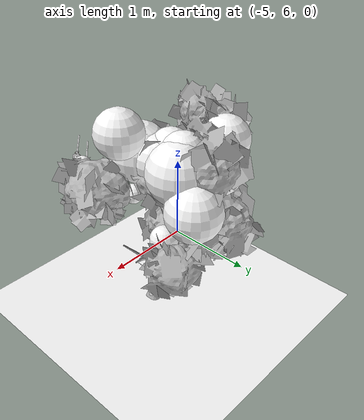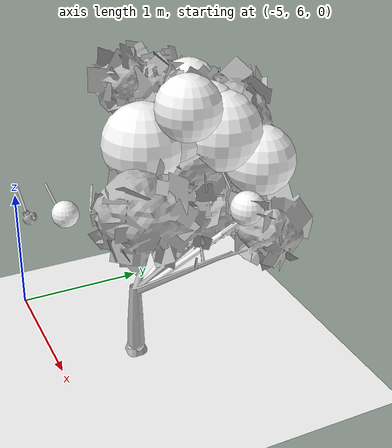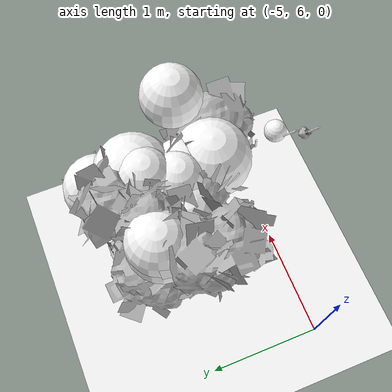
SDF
<sdf version="1.11">
 <world name="peach_orchard">
  <model name="ground">
   <static>true</static>
   <link name="link">
    <visual name="soil">
     <geometry><plane><normal>0 0 1</normal><size>32 22</size></plane></geometry>
     <material>
      <ambient>1 1 1 1</ambient>
      <diffuse>1 1 1 1</diffuse>
      <specular>0.1 0.1 0.1 1</specular>
      <pbr>
       <metal>
        <albedo_map>textures/soil_albedo.png</albedo_map>
        <normal_map type="tangent">textures/soil_normal.png</normal_map>
        <roughness>0.95</roughness>
        <metalness>0</metalness>
       </metal>
      </pbr>
     </material>
    </visual>
    <collision name="c_soil">
     <geometry><plane><normal>0 0 1</normal><size>32 22</size></plane></geometry>
    </collision>
   </link>
  </model>
  <model name="tree_r1_t6">
   <pose>-4 6.6 0 0 0 0</pose>
   <static>true</static>
   <link name="link">
    <visual name="tree_mesh">
     <pose>0 0 0 0 0 -0.0797079</pose>
     <geometry>
      <mesh><uri>model://peach_sim/meshes/peach_tree_a.glb</uri><scale>1.02047 1.02047 1.02047</scale></mesh>
     </geometry>
    </visual>
    <visual name="trunk_0">
     <pose>0 0 0.155446 0 0 0</pose>
     <geometry><cylinder><radius>0.0460714</radius><length>0.310893</length></cylinder></geometry>
     <material>
      <ambient>1 1 1 1</ambient>
      <diffuse>1 1 1 1</diffuse>
      <specular>0.1 0.1 0.1 1</specular>
      <pbr>
       <metal>
        <albedo_map>textures/bark_albedo.png</albedo_map>
        <normal_map type="tangent">textures/bark_normal.png</normal_map>
        <roughness>0.9</roughness>
        <metalness>0</metalness>
       </metal>
      </pbr>
     </material>
    </visual>
    <collision name="c_trunk_0">
     <pose>0 0 0.155446 0 0 0</pose>
     <geometry><cylinder><radius>0.0460714</radius><length>0.310893</length></cylinder></geometry>
    </collision>
    <visual name="trunk_1">
     <pose>0 0 0.438076 0 0 0</pose>
     <geometry><cylinder><radius>0.0331714</radius><length>0.254367</length></cylinder></geometry>
     <material>
      <ambient>1 1 1 1</ambient>
      <diffuse>1 1 1 1</diffuse>
      <specular>0.1 0.1 0.1 1</specular>
      <pbr>
       <metal>
        <albedo_map>textures/bark_albedo.png</albedo_map>
        <normal_map type="tangent">textures/bark_normal.png</normal_map>
        <roughness>0.9</roughness>
        <metalness>0</metalness>
       </metal>
      </pbr>
     </material>
    </visual>
    <collision name="c_trunk_1">
     <pose>0 0 0.438076 0 0 0</pose>
     <geometry><cylinder><radius>0.0331714</radius><length>0.254367</length></cylinder></geometry>
    </collision>
    <visual name="root_flare">
     <pose>0 0 0.035 0 0 0</pose>
     <geometry><cylinder><radius>0.0668035</radius><length>0.07</length></cylinder></geometry>
     <material>
      <ambient>1 1 1 1</ambient>
      <diffuse>1 1 1 1</diffuse>
      <specular>0.1 0.1 0.1 1</specular>
      <pbr>
       <metal>
        <albedo_map>textures/bark_albedo.png</albedo_map>
        <normal_map type="tangent">textures/bark_normal.png</normal_map>
        <roughness>0.95</roughness>
        <metalness>0</metalness>
       </metal>
      </pbr>
     </material>
    </visual>
    <visual name="scaffold_0">
     <pose>-0.0563852 0.23334 0.718153 0 0.880829 1.80789</pose>
     <geometry><cylinder><radius>0.022</radius><length>0.622499</length></cylinder></geometry>
     <material>
      <ambient>1 1 1 1</ambient>
      <diffuse>1 1 1 1</diffuse>
      <specular>0.1 0.1 0.1 1</specular>
      <pbr>
       <metal>
        <albedo_map>textures/bark_albedo.png</albedo_map>
        <normal_map type="tangent">textures/bark_normal.png</normal_map>
        <roughness>0.9</roughness>
        <metalness>0</metalness>
       </metal>
      </pbr>
     </material>
    </visual>
    <collision name="c_scaffold_0">
     <pose>-0.0563852 0.23334 0.718153 0 0.880829 1.80789</pose>
     <geometry><cylinder><radius>0.022</radius><length>0.622499</length></cylinder></geometry>
    </collision>
    <visual name="branchlet_0_0">
     <pose>-0.16412 0.266857 0.862074 0 0.948913 -2.61581</pose>
     <geometry><cylinder><radius>0.012</radius><length>0.248601</length></cylinder></geometry>
     <material>
      <ambient>1 1 1 1</ambient>
      <diffuse>1 1 1 1</diffuse>
      <specular>0.1 0.1 0.1 1</specular>
      <pbr>
       <metal>
        <albedo_map>textures/bark_albedo.png</albedo_map>
        <normal_map type="tangent">textures/bark_normal.png</normal_map>
        <roughness>0.9</roughness>
        <metalness>0</metalness>
       </metal>
      </pbr>
     </material>
    </visual>
    <visual name="branchlet_0_1">
     <pose>-0.00693614 0.469387 0.894814 0 1.14023 0.863252</pose>
     <geometry><cylinder><radius>0.012</radius><length>0.281148</length></cylinder></geometry>
     <material>
      <ambient>1 1 1 1</ambient>
      <diffuse>1 1 1 1</diffuse>
      <specular>0.1 0.1 0.1 1</specular>
      <pbr>
       <metal>
        <albedo_map>textures/bark_albedo.png</albedo_map>
        <normal_map type="tangent">textures/bark_normal.png</normal_map>
        <roughness>0.9</roughness>
        <metalness>0</metalness>
       </metal>
      </pbr>
     </material>
    </visual>
    <visual name="branchlet_0_2">
     <pose>-0.171446 0.26641 0.793555 0 1.0024 2.84659</pose>
     <geometry><cylinder><radius>0.012</radius><length>0.286609</length></cylinder></geometry>
     <material>
      <ambient>1 1 1 1</ambient>
      <diffuse>1 1 1 1</diffuse>
      <specular>0.1 0.1 0.1 1</specular>
      <pbr>
       <metal>
        <albedo_map>textures/bark_albedo.png</albedo_map>
        <normal_map type="tangent">textures/bark_normal.png</normal_map>
        <roughness>0.9</roughness>
        <metalness>0</metalness>
       </metal>
      </pbr>
     </material>
    </visual>
    <visual name="scaffold_1">
     <pose>0.17417 0.307586 0.832625 0 0.846711 1.05556</pose>
     <geometry><cylinder><radius>0.022</radius><length>0.943726</length></cylinder></geometry>
     <material>
      <ambient>1 1 1 1</ambient>
      <diffuse>1 1 1 1</diffuse>
      <specular>0.1 0.1 0.1 1</specular>
      <pbr>
       <metal>
        <albedo_map>textures/bark_albedo.png</albedo_map>
        <normal_map type="tangent">textures/bark_normal.png</normal_map>
        <roughness>0.9</roughness>
        <metalness>0</metalness>
       </metal>
      </pbr>
     </material>
    </visual>
    <collision name="c_scaffold_1">
     <pose>0.17417 0.307586 0.832625 0 0.846711 1.05556</pose>
     <geometry><cylinder><radius>0.022</radius><length>0.943726</length></cylinder></geometry>
    </collision>
    <visual name="branchlet_1_0">
     <pose>0.388644 0.568651 1.16295 0 0.748782 0.356359</pose>
     <geometry><cylinder><radius>0.012</radius><length>0.26473</length></cylinder></geometry>
     <material>
      <ambient>1 1 1 1</ambient>
      <diffuse>1 1 1 1</diffuse>
      <specular>0.1 0.1 0.1 1</specular>
      <pbr>
       <metal>
        <albedo_map>textures/bark_albedo.png</albedo_map>
        <normal_map type="tangent">textures/bark_normal.png</normal_map>
        <roughness>0.9</roughness>
        <metalness>0</metalness>
       </metal>
      </pbr>
     </material>
    </visual>
    <visual name="branchlet_1_1">
     <pose>0.22652 0.489331 1.012 0 0.805998 1.53782</pose>
     <geometry><cylinder><radius>0.012</radius><length>0.262973</length></cylinder></geometry>
     <material>
      <ambient>1 1 1 1</ambient>
      <diffuse>1 1 1 1</diffuse>
      <specular>0.1 0.1 0.1 1</specular>
      <pbr>
       <metal>
        <albedo_map>textures/bark_albedo.png</albedo_map>
        <normal_map type="tangent">textures/bark_normal.png</normal_map>
        <roughness>0.9</roughness>
        <metalness>0</metalness>
       </metal>
      </pbr>
     </material>
    </visual>
    <visual name="canopy_0">
     <pose>0.139277 0.229171 1.80107 0 0 0</pose>
     <geometry><sphere><radius>0.22702</radius></sphere></geometry>
     <material>
      <ambient>1 1 1 1</ambient>
      <diffuse>1 1 1 1</diffuse>
      <specular>0.1 0.1 0.1 1</specular>
      <pbr>
       <metal>
        <albedo_map>textures/leaf_albedo.png</albedo_map>
        <normal_map type="tangent">textures/leaf_normal.png</normal_map>
        <roughness>0.85</roughness>
        <metalness>0</metalness>
       </metal>
      </pbr>
     </material>
    </visual>
    <collision name="c_canopy_0">
     <pose>0.139277 0.229171 1.80107 0 0 0</pose>
     <geometry><sphere><radius>0.22702</radius></sphere></geometry>
    </collision>
    <visual name="canopy_1">
     <pose>0.053661 0.2985 1.89747 0 0 0</pose>
     <geometry><sphere><radius>0.184784</radius></sphere></geometry>
     <material>
      <ambient>1 1 1 1</ambient>
      <diffuse>1 1 1 1</diffuse>
      <specular>0.1 0.1 0.1 1</specular>
      <pbr>
       <metal>
        <albedo_map>textures/leaf_albedo.png</albedo_map>
        <normal_map type="tangent">textures/leaf_normal.png</normal_map>
        <roughness>0.85</roughness>
        <metalness>0</metalness>
       </metal>
      </pbr>
     </material>
    </visual>
    <collision name="c_canopy_1">
     <pose>0.053661 0.2985 1.89747 0 0 0</pose>
     <geometry><sphere><radius>0.184784</radius></sphere></geometry>
    </collision>
    <visual name="canopy_2">
     <pose>-0.161771 0.310428 1.80896 0 0 0</pose>
     <geometry><sphere><radius>0.191631</radius></sphere></geometry>
     <material>
      <ambient>1 1 1 1</ambient>
      <diffuse>1 1 1 1</diffuse>
      <specular>0.1 0.1 0.1 1</specular>
      <pbr>
       <metal>
        <albedo_map>textures/leaf_albedo.png</albedo_map>
        <normal_map type="tangent">textures/leaf_normal.png</normal_map>
        <roughness>0.85</roughness>
        <metalness>0</metalness>
       </metal>
      </pbr>
     </material>
    </visual>
    <collision name="c_canopy_2">
     <pose>-0.161771 0.310428 1.80896 0 0 0</pose>
     <geometry><sphere><radius>0.191631</radius></sphere></geometry>
    </collision>
    <visual name="canopy_3">
     <pose>0.500705 0.163103 2.14758 0 0 0</pose>
     <geometry><sphere><radius>0.210416</radius></sphere></geometry>
     <material>
      <ambient>1 1 1 1</ambient>
      <diffuse>1 1 1 1</diffuse>
      <specular>0.1 0.1 0.1 1</specular>
      <pbr>
       <metal>
        <albedo_map>textures/leaf_albedo.png</albedo_map>
        <normal_map type="tangent">textures/leaf_normal.png</normal_map>
        <roughness>0.85</roughness>
        <metalness>0</metalness>
       </metal>
      </pbr>
     </material>
    </visual>
    <visual name="canopy_4">
     <pose>-0.269784 0.540299 1.66564 0 0 0</pose>
     <geometry><sphere><radius>0.257334</radius></sphere></geometry>
     <material>
      <ambient>1 1 1 1</ambient>
      <diffuse>1 1 1 1</diffuse>
      <specular>0.1 0.1 0.1 1</specular>
      <pbr>
       <metal>
        <albedo_map>textures/leaf_albedo.png</albedo_map>
        <normal_map type="tangent">textures/leaf_normal.png</normal_map>
        <roughness>0.85</roughness>
        <metalness>0</metalness>
       </metal>
      </pbr>
     </material>
    </visual>
    <visual name="canopy_5">
     <pose>0.322686 0.804857 1.60552 0 0 0</pose>
     <geometry><sphere><radius>0.247517</radius></sphere></geometry>
     <material>
      <ambient>1 1 1 1</ambient>
      <diffuse>1 1 1 1</diffuse>
      <specular>0.1 0.1 0.1 1</specular>
      <pbr>
       <metal>
        <albedo_map>textures/leaf_albedo.png</albedo_map>
        <normal_map type="tangent">textures/leaf_normal.png</normal_map>
        <roughness>0.85</roughness>
        <metalness>0</metalness>
       </metal>
      </pbr>
     </material>
    </visual>
    <visual name="canopy_6">
     <pose>-0.03323 0.440432 1.69801 0 0 0</pose>
     <geometry><sphere><radius>0.212778</radius></sphere></geometry>
     <material>
      <ambient>1 1 1 1</ambient>
      <diffuse>1 1 1 1</diffuse>
      <specular>0.1 0.1 0.1 1</specular>
      <pbr>
       <metal>
        <albedo_map>textures/leaf_albedo.png</albedo_map>
        <normal_map type="tangent">textures/leaf_normal.png</normal_map>
        <roughness>0.85</roughness>
        <metalness>0</metalness>
       </metal>
      </pbr>
     </material>
    </visual>
    <visual name="canopy_7">
     <pose>0.128428 0.504241 1.95153 0 0 0</pose>
     <geometry><sphere><radius>0.192184</radius></sphere></geometry>
     <material>
      <ambient>1 1 1 1</ambient>
      <diffuse>1 1 1 1</diffuse>
      <specular>0.1 0.1 0.1 1</specular>
      <pbr>
       <metal>
        <albedo_map>textures/leaf_albedo.png</albedo_map>
        <normal_map type="tangent">textures/leaf_normal.png</normal_map>
        <roughness>0.85</roughness>
        <metalness>0</metalness>
       </metal>
      </pbr>
     </material>
    </visual>
    <visual name="canopy_8">
     <pose>-0.330089 0.576447 1.93813 0 0 0</pose>
     <geometry><sphere><radius>0.219715</radius></sphere></geometry>
     <material>
      <ambient>1 1 1 1</ambient>
      <diffuse>1 1 1 1</diffuse>
      <specular>0.1 0.1 0.1 1</specular>
      <pbr>
       <metal>
        <albedo_map>textures/leaf_albedo.png</albedo_map>
        <normal_map type="tangent">textures/leaf_normal.png</normal_map>
        <roughness>0.85</roughness>
        <metalness>0</metalness>
       </metal>
      </pbr>
     </material>
    </visual>
    <visual name="canopy_9">
     <pose>0.0551293 0.306823 1.83378 0 0 0</pose>
     <geometry><sphere><radius>0.185231</radius></sphere></geometry>
     <material>
      <ambient>1 1 1 1</ambient>
      <diffuse>1 1 1 1</diffuse>
      <specular>0.1 0.1 0.1 1</specular>
      <pbr>
       <metal>
        <albedo_map>textures/leaf_albedo.png</albedo_map>
        <normal_map type="tangent">textures/leaf_normal.png</normal_map>
        <roughness>0.85</roughness>
        <metalness>0</metalness>
       </metal>
      </pbr>
     </material>
    </visual>
    <visual name="canopy_10">
     <pose>0.150453 0.0129475 1.79868 0 0 0</pose>
     <geometry><sphere><radius>0.278689</radius></sphere></geometry>
     <material>
      <ambient>1 1 1 1</ambient>
      <diffuse>1 1 1 1</diffuse>
      <specular>0.1 0.1 0.1 1</specular>
      <pbr>
       <metal>
        <albedo_map>textures/leaf_albedo.png</albedo_map>
        <normal_map type="tangent">textures/leaf_normal.png</normal_map>
        <roughness>0.85</roughness>
        <metalness>0</metalness>
       </metal>
      </pbr>
     </material>
    </visual>
    <visual name="canopy_11">
     <pose>0.228379 0.546825 1.82772 0 0 0</pose>
     <geometry><sphere><radius>0.279135</radius></sphere></geometry>
     <material>
      <ambient>1 1 1 1</ambient>
      <diffuse>1 1 1 1</diffuse>
      <specular>0.1 0.1 0.1 1</specular>
      <pbr>
       <metal>
        <albedo_map>textures/leaf_albedo.png</albedo_map>
        <normal_map type="tangent">textures/leaf_normal.png</normal_map>
        <roughness>0.85</roughness>
        <metalness>0</metalness>
       </metal>
      </pbr>
     </material>
    </visual>
    <visual name="foliage_0">
     <pose>0.292826 0.0656254 1.45358 0 0 0</pose>
     <geometry><sphere><radius>0.0905081</radius></sphere></geometry>
     <material>
      <ambient>1 1 1 1</ambient>
      <diffuse>1 1 1 1</diffuse>
      <specular>0.1 0.1 0.1 1</specular>
      <pbr>
       <metal>
        <albedo_map>textures/leaf_albedo.png</albedo_map>
        <normal_map type="tangent">textures/leaf_normal.png</normal_map>
        <roughness>0.85</roughness>
        <metalness>0</metalness>
       </metal>
      </pbr>
     </material>
    </visual>
    <visual name="foliage_4">
     <pose>0.486793 0.631297 1.34801 0 0 0</pose>
     <geometry><sphere><radius>0.121265</radius></sphere></geometry>
     <material>
      <ambient>1 1 1 1</ambient>
      <diffuse>1 1 1 1</diffuse>
      <specular>0.1 0.1 0.1 1</specular>
      <pbr>
       <metal>
        <albedo_map>textures/leaf_albedo.png</albedo_map>
        <normal_map type="tangent">textures/leaf_normal.png</normal_map>
        <roughness>0.85</roughness>
        <metalness>0</metalness>
       </metal>
      </pbr>
     </material>
    </visual>
    <visual name="foliage_8">
     <pose>0.326243 -0.594078 1.50272 0 0 0</pose>
     <geometry><sphere><radius>0.0864075</radius></sphere></geometry>
     <material>
      <ambient>1 1 1 1</ambient>
      <diffuse>1 1 1 1</diffuse>
      <specular>0.1 0.1 0.1 1</specular>
      <pbr>
       <metal>
        <albedo_map>textures/leaf_albedo.png</albedo_map>
        <normal_map type="tangent">textures/leaf_normal.png</normal_map>
        <roughness>0.85</roughness>
        <metalness>0</metalness>
       </metal>
      </pbr>
     </material>
    </visual>
    <visual name="twig_0">
     <pose>0.274969 0.0701198 1.54979 0 0.219394 -2.87174</pose>
     <geometry><cylinder><radius>0.007</radius><length>0.148588</length></cylinder></geometry>
     <material>
      <ambient>1 1 1 1</ambient>
      <diffuse>1 1 1 1</diffuse>
      <specular>0.1 0.1 0.1 1</specular>
      <pbr>
       <metal>
        <albedo_map>textures/bark_albedo.png</albedo_map>
        <normal_map type="tangent">textures/bark_normal.png</normal_map>
        <roughness>0.9</roughness>
        <metalness>0</metalness>
       </metal>
      </pbr>
     </material>
    </visual>
    <visual name="twig_1">
     <pose>0.211327 0.107679 1.53851 0 0.202906 -2.36469</pose>
     <geometry><cylinder><radius>0.007</radius><length>0.116482</length></cylinder></geometry>
     <material>
      <ambient>1 1 1 1</ambient>
      <diffuse>1 1 1 1</diffuse>
      <specular>0.1 0.1 0.1 1</specular>
      <pbr>
       <metal>
        <albedo_map>textures/bark_albedo.png</albedo_map>
        <normal_map type="tangent">textures/bark_normal.png</normal_map>
        <roughness>0.9</roughness>
        <metalness>0</metalness>
       </metal>
      </pbr>
     </material>
    </visual>
    <visual name="twig_2">
     <pose>0.190153 0.274959 1.46731 0 0.332292 2.521</pose>
     <geometry><cylinder><radius>0.007</radius><length>0.128142</length></cylinder></geometry>
     <material>
      <ambient>1 1 1 1</ambient>
      <diffuse>1 1 1 1</diffuse>
      <specular>0.1 0.1 0.1 1</specular>
      <pbr>
       <metal>
        <albedo_map>textures/bark_albedo.png</albedo_map>
        <normal_map type="tangent">textures/bark_normal.png</normal_map>
        <roughness>0.9</roughness>
        <metalness>0</metalness>
       </metal>
      </pbr>
     </material>
    </visual>
    <visual name="twig_3">
     <pose>0.16142 0.345957 1.4584 0 0.601581 -2.88882</pose>
     <geometry><cylinder><radius>0.007</radius><length>0.206213</length></cylinder></geometry>
     <material>
      <ambient>1 1 1 1</ambient>
      <diffuse>1 1 1 1</diffuse>
      <specular>0.1 0.1 0.1 1</specular>
      <pbr>
       <metal>
        <albedo_map>textures/bark_albedo.png</albedo_map>
        <normal_map type="tangent">textures/bark_normal.png</normal_map>
        <roughness>0.9</roughness>
        <metalness>0</metalness>
       </metal>
      </pbr>
     </material>
    </visual>
    <visual name="twig_4">
     <pose>0.368676 0.523451 1.52761 0 0.442477 -2.32398</pose>
     <geometry><cylinder><radius>0.007</radius><length>0.127567</length></cylinder></geometry>
     <material>
      <ambient>1 1 1 1</ambient>
      <diffuse>1 1 1 1</diffuse>
      <specular>0.1 0.1 0.1 1</specular>
      <pbr>
       <metal>
        <albedo_map>textures/bark_albedo.png</albedo_map>
        <normal_map type="tangent">textures/bark_normal.png</normal_map>
        <roughness>0.9</roughness>
        <metalness>0</metalness>
       </metal>
      </pbr>
     </material>
    </visual>
    <visual name="twig_5">
     <pose>0.267438 0.743042 1.54467 0 0.742052 2.80584</pose>
     <geometry><cylinder><radius>0.007</radius><length>0.175438</length></cylinder></geometry>
     <material>
      <ambient>1 1 1 1</ambient>
      <diffuse>1 1 1 1</diffuse>
      <specular>0.1 0.1 0.1 1</specular>
      <pbr>
       <metal>
        <albedo_map>textures/bark_albedo.png</albedo_map>
        <normal_map type="tangent">textures/bark_normal.png</normal_map>
        <roughness>0.9</roughness>
        <metalness>0</metalness>
       </metal>
      </pbr>
     </material>
    </visual>
    <visual name="twig_6">
     <pose>0.196366 0.930762 1.56495 0 0.48874 -2.83306</pose>
     <geometry><cylinder><radius>0.007</radius><length>0.105158</length></cylinder></geometry>
     <material>
      <ambient>1 1 1 1</ambient>
      <diffuse>1 1 1 1</diffuse>
      <specular>0.1 0.1 0.1 1</specular>
      <pbr>
       <metal>
        <albedo_map>textures/bark_albedo.png</albedo_map>
        <normal_map type="tangent">textures/bark_normal.png</normal_map>
        <roughness>0.9</roughness>
        <metalness>0</metalness>
       </metal>
      </pbr>
     </material>
    </visual>
    <visual name="twig_7">
     <pose>0.262839 -0.39947 1.54461 0 0.271121 2.44569</pose>
     <geometry><cylinder><radius>0.007</radius><length>0.178491</length></cylinder></geometry>
     <material>
      <ambient>1 1 1 1</ambient>
      <diffuse>1 1 1 1</diffuse>
      <specular>0.1 0.1 0.1 1</specular>
      <pbr>
       <metal>
        <albedo_map>textures/bark_albedo.png</albedo_map>
        <normal_map type="tangent">textures/bark_normal.png</normal_map>
        <roughness>0.9</roughness>
        <metalness>0</metalness>
       </metal>
      </pbr>
     </material>
    </visual>
    <visual name="twig_8">
     <pose>0.222235 -0.645996 1.59426 0 0.498165 -2.50215</pose>
     <geometry><cylinder><radius>0.007</radius><length>0.176146</length></cylinder></geometry>
     <material>
      <ambient>1 1 1 1</ambient>
      <diffuse>1 1 1 1</diffuse>
      <specular>0.1 0.1 0.1 1</specular>
      <pbr>
       <metal>
        <albedo_map>textures/bark_albedo.png</albedo_map>
        <normal_map type="tangent">textures/bark_normal.png</normal_map>
        <roughness>0.9</roughness>
        <metalness>0</metalness>
       </metal>
      </pbr>
     </material>
    </visual>
    <visual name="twig_9">
     <pose>0.189731 -0.826428 1.58163 0 0.418723 -2.75962</pose>
     <geometry><cylinder><radius>0.007</radius><length>0.179669</length></cylinder></geometry>
     <material>
      <ambient>1 1 1 1</ambient>
      <diffuse>1 1 1 1</diffuse>
      <specular>0.1 0.1 0.1 1</specular>
      <pbr>
       <metal>
        <albedo_map>textures/bark_albedo.png</albedo_map>
        <normal_map type="tangent">textures/bark_normal.png</normal_map>
        <roughness>0.9</roughness>
        <metalness>0</metalness>
       </metal>
      </pbr>
     </material>
    </visual>
   </link>
  </model>
  <model name="peach_tree_r1_t6_09">
   <pose>-3.74791 5.81155 1.45 0 0.647307 -2.43371</pose>
   <static>true</static>
   <link name="bag">
    <visual name="bag_mesh">
     <pose>0 0 0.0400623 0 0 -0</pose>
     <geometry>
      <mesh><uri>model://peach_sim/meshes/bagged_peach.glb</uri><scale>1.06042 1.17245 0.910506</scale></mesh>
     </geometry>
    </visual>
    <visual name="body">
     <pose>0 0 0.0220623 0 0 0</pose>
     <geometry><ellipsoid><radii>0.0397658 0.0304837 0.0238273</radii></ellipsoid></geometry>
     <material>
      <ambient>1 1 1 1</ambient>
      <diffuse>1 1 1 1</diffuse>
      <specular>0.1 0.1 0.1 1</specular>
      <pbr>
       <metal>
        <albedo_map>textures/paper_bag_albedo.png</albedo_map>
        <normal_map type="tangent">textures/paper_bag_normal.png</normal_map>
        <roughness>0.72</roughness>
        <metalness>0</metalness>
       </metal>
      </pbr>
     </material>
    </visual>
    <visual name="bottom_fold">
     <pose>0 0 0.012 0 0 0.35</pose>
     <geometry><box><size>0.061637 0.0350563 0.022</size></box></geometry>
     <material>
      <ambient>1 1 1 1</ambient>
      <diffuse>1 1 1 1</diffuse>
      <specular>0.1 0.1 0.1 1</specular>
      <pbr>
       <metal>
        <albedo_map>textures/paper_bag_albedo.png</albedo_map>
        <normal_map type="tangent">textures/paper_bag_normal.png</normal_map>
        <roughness>0.8</roughness>
        <metalness>0</metalness>
       </metal>
      </pbr>
     </material>
    </visual>
    <visual name="fruit">
     <pose>0 0 0.0216229 0 0 0</pose>
     <geometry><sphere><radius>0.0287278</radius></sphere></geometry>
     <material>
      <ambient>1 1 1 1</ambient>
      <diffuse>1 1 1 1</diffuse>
      <specular>0.1 0.1 0.1 1</specular>
      <pbr>
       <metal>
        <albedo_map>textures/fruit_skin_albedo.png</albedo_map>
        <normal_map type="tangent">textures/fruit_skin_normal.png</normal_map>
        <roughness>0.55</roughness>
        <metalness>0</metalness>
       </metal>
      </pbr>
     </material>
    </visual>
    <visual name="neck">
     <pose>0 0 0.0531245 0 0 0</pose>
     <geometry><cylinder><radius>0.013</radius><length>0.018</length></cylinder></geometry>
     <material>
      <ambient>1 1 1 1</ambient>
      <diffuse>1 1 1 1</diffuse>
      <specular>0.1 0.1 0.1 1</specular>
      <pbr>
       <metal>
        <albedo_map>textures/paper_bag_albedo.png</albedo_map>
        <normal_map type="tangent">textures/paper_bag_normal.png</normal_map>
        <roughness>0.75</roughness>
        <metalness>0</metalness>
       </metal>
      </pbr>
     </material>
    </visual>
    <visual name="gather">
     <pose>0 0 0.0341245 0 0 0</pose>
     <geometry><cylinder><radius>0.019</radius><length>0.02</length></cylinder></geometry>
     <material>
      <ambient>1 1 1 1</ambient>
      <diffuse>1 1 1 1</diffuse>
      <specular>0.1 0.1 0.1 1</specular>
      <pbr>
       <metal>
        <albedo_map>textures/paper_bag_albedo.png</albedo_map>
        <normal_map type="tangent">textures/paper_bag_normal.png</normal_map>
        <roughness>0.8</roughness>
        <metalness>0</metalness>
       </metal>
      </pbr>
     </material>
    </visual>
    <visual name="inner_paper">
     <pose>0 0 0.0581245 0 0 0</pose>
     <geometry><cylinder><radius>0.01</radius><length>0.008</length></cylinder></geometry>
     <material>
      <ambient>0.180392 0.14902 0.133333 1</ambient>
      <diffuse>0.180392 0.14902 0.133333 1</diffuse>
      <specular>0.1 0.1 0.1 1</specular>
     </material>
    </visual>
    <visual name="wire_0">
     <pose>0 0 0.0481245 0 0 0</pose>
     <geometry><cylinder><radius>0.0205</radius><length>0.0035</length></cylinder></geometry>
     <material>
      <ambient>0.25 0.25 0.25 1</ambient>
      <diffuse>0.25 0.25 0.25 1</diffuse>
      <specular>0.1 0.1 0.1 1</specular>
     </material>
    </visual>
    <visual name="wire_1">
     <pose>0 0 0.0551245 0 0 0</pose>
     <geometry><cylinder><radius>0.0205</radius><length>0.0035</length></cylinder></geometry>
     <material>
      <ambient>0.25 0.25 0.25 1</ambient>
      <diffuse>0.25 0.25 0.25 1</diffuse>
      <specular>0.1 0.1 0.1 1</specular>
     </material>
    </visual>
    <visual name="wire_tail">
     <pose>0.01 0 0.0561245 0 0.521618 0</pose>
     <geometry><cylinder><radius>0.0012</radius><length>0.026</length></cylinder></geometry>
     <material>
      <ambient>0.25 0.25 0.25 1</ambient>
      <diffuse>0.25 0.25 0.25 1</diffuse>
      <specular>0.1 0.1 0.1 1</specular>
     </material>
    </visual>
    <collision name="c_body">
     <pose>0 0 0.0220623 0 0 0</pose>
     <geometry><cylinder><radius>0.0397658</radius><length>0.0441245</length></cylinder></geometry>
    </collision>
   </link>
  </model>
 </world>
</sdf>
